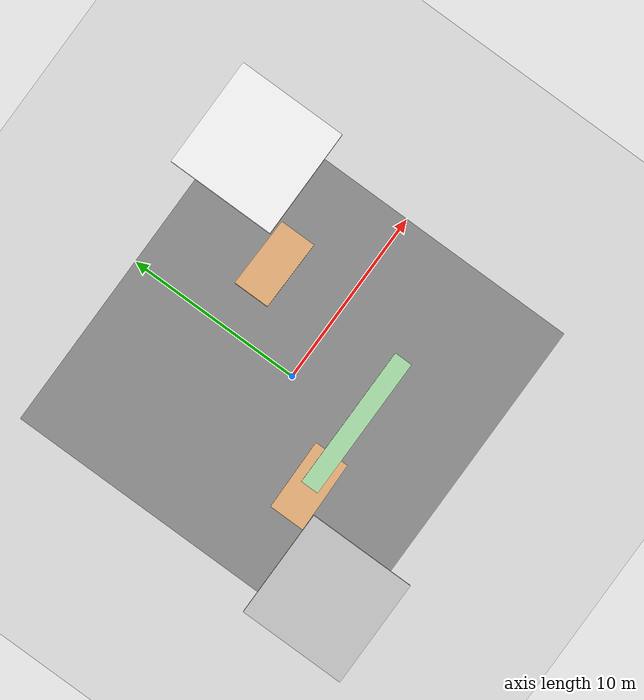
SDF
<?xml version="1.0" ?>
<sdf version="1.6">
  <world name="multi_level">
    <include>
      <uri>model://sun</uri>
    </include>
    <include>
      <uri>model://ground_plane</uri>
    </include>

    <!-- Ground level platform -->
    <model name="ground_platform">
      <static>true</static>
      <pose>0 0 0.1 0 0 0</pose>
      <link name="link">
        <collision name="collision">
          <geometry>
            <box>
              <size>20 20 0.2</size>
            </box>
          </geometry>
        </collision>
        <visual name="visual">
          <geometry>
            <box>
              <size>20 20 0.2</size>
            </box>
          </geometry>
          <material>
            <ambient>0.5 0.5 0.5 1</ambient>
          </material>
        </visual>
      </link>
    </model>

    <!-- Elevated platform 1 -->
    <model name="platform_level1">
      <static>true</static>
      <pose>-8 -8 1.1 0 0 0</pose>
      <link name="link">
        <collision name="collision">
          <geometry>
            <box>
              <size>6 6 0.2</size>
            </box>
          </geometry>
        </collision>
        <visual name="visual">
          <geometry>
            <box>
              <size>6 6 0.2</size>
            </box>
          </geometry>
          <material>
            <ambient>0.7 0.7 0.7 1</ambient>
          </material>
        </visual>
      </link>
    </model>

    <!-- Elevated platform 2 -->
    <model name="platform_level2">
      <static>true</static>
      <pose>8 8 2.1 0 0 0</pose>
      <link name="link">
        <collision name="collision">
          <geometry>
            <box>
              <size>6 6 0.2</size>
            </box>
          </geometry>
        </collision>
        <visual name="visual">
          <geometry>
            <box>
              <size>6 6 0.2</size>
            </box>
          </geometry>
          <material>
            <ambient>0.9 0.9 0.9 1</ambient>
          </material>
        </visual>
      </link>
    </model>

    <!-- Support pillars -->
    <model name="pillar1">
      <static>true</static>
      <pose>-8 -8 0.5 0 0 0</pose>
      <link name="link">
        <collision name="collision">
          <geometry>
            <cylinder>
              <radius>0.3</radius>
              <length>1</length>
            </cylinder>
          </geometry>
        </collision>
        <visual name="visual">
          <geometry>
            <cylinder>
              <radius>0.3</radius>
              <length>1</length>
            </cylinder>
          </geometry>
          <material>
            <ambient>0.4 0.4 0.4 1</ambient>
          </material>
        </visual>
      </link>
    </model>

    <model name="pillar2">
      <static>true</static>
      <pose>8 8 1 0 0 0</pose>
      <link name="link">
        <collision name="collision">
          <geometry>
            <cylinder>
              <radius>0.3</radius>
              <length>2</length>
            </cylinder>
          </geometry>
        </collision>
        <visual name="visual">
          <geometry>
            <cylinder>
              <radius>0.3</radius>
              <length>2</length>
            </cylinder>
          </geometry>
          <material>
            <ambient>0.4 0.4 0.4 1</ambient>
          </material>
        </visual>
      </link>
    </model>

    <!-- Ramps -->
    <model name="ramp1">
      <static>true</static>
      <pose>-4 -4 0.55 0 0.2 0</pose>
      <link name="link">
        <collision name="collision">
          <geometry>
            <box>
              <size>4 2 0.1</size>
            </box>
          </geometry>
        </collision>
        <visual name="visual">
          <geometry>
            <box>
              <size>4 2 0.1</size>
            </box>
          </geometry>
          <material>
            <ambient>0.8 0.6 0.4 1</ambient>
          </material>
        </visual>
      </link>
    </model>

    <model name="ramp2">
      <static>true</static>
      <pose>4 4 1.55 0 0.2 0</pose>
      <link name="link">
        <collision name="collision">
          <geometry>
            <box>
              <size>4 2 0.1</size>
            </box>
          </geometry>
        </collision>
        <visual name="visual">
          <geometry>
            <box>
              <size>4 2 0.1</size>
            </box>
          </geometry>
          <material>
            <ambient>0.8 0.6 0.4 1</ambient>
          </material>
        </visual>
      </link>
    </model>

    <!-- Bridges -->
    <model name="bridge1">
      <static>true</static>
      <pose>0 -4 1.1 0 0 0</pose>
      <link name="link">
        <collision name="collision">
          <geometry>
            <box>
              <size>8 1 0.1</size>
            </box>
          </geometry>
        </collision>
        <visual name="visual">
          <geometry>
            <box>
              <size>8 1 0.1</size>
            </box>
          </geometry>
          <material>
            <ambient>0.6 0.8 0.6 1</ambient>
          </material>
        </visual>
      </link>
    </model>

  </world>
</sdf>
